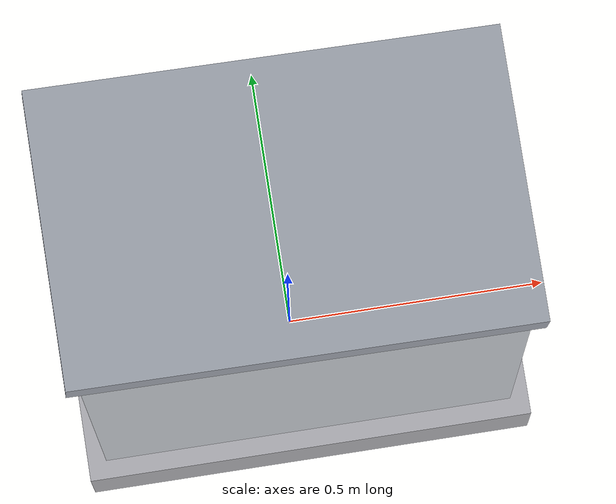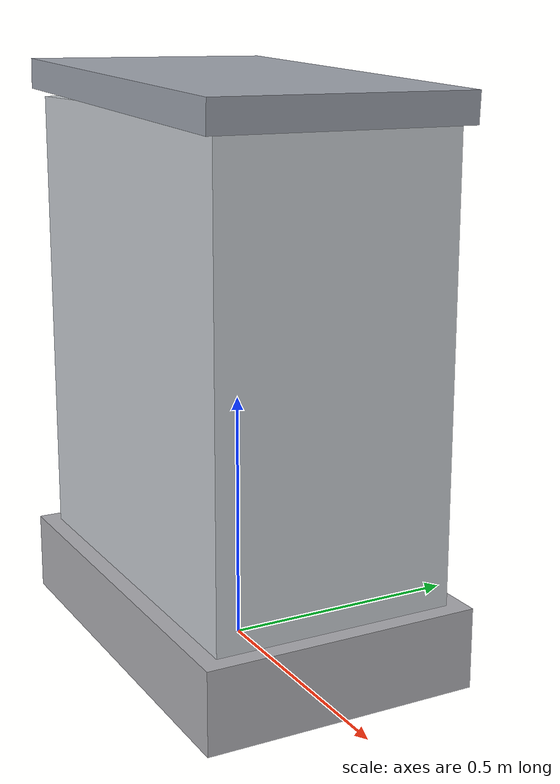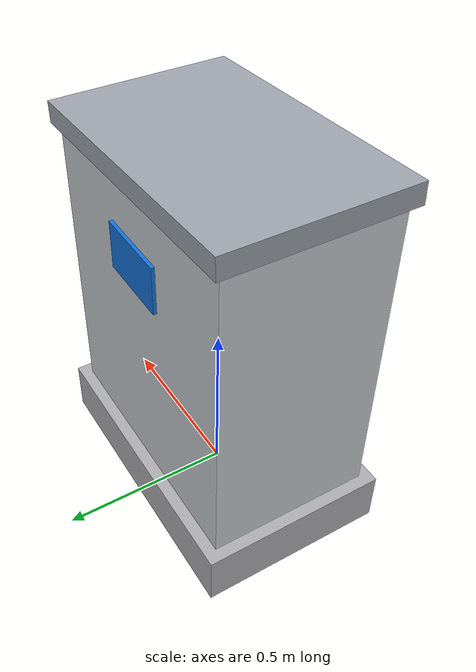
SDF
<?xml version="1.0" ?>
<sdf version="1.8">
  <model name="telecom_box">
    <static>true</static>
    <link name="box_link">

      <!-- 物理碰撞剛體 (單一 Box 幾何) -->
      <collision name="box_col">
        <pose>0 0 0.55 0 0 0</pose>
        <geometry><box><size>0.8 0.5 1.1</size></box></geometry>
      </collision>

      <!-- 視覺：混凝土基座 (Concrete Base) -->
      <visual name="base">
        <pose>0 0 0.08 0 0 0</pose>
        <geometry><box><size>0.85 0.55 0.16</size></box></geometry>
        <material><ambient>0.6 0.6 0.62 1</ambient><diffuse>0.68 0.68 0.70 1</diffuse></material>
      </visual>

      <!-- 視覺：中信灰烤漆金屬箱體 (Light Industrial Grey Metal) -->
      <visual name="cabinet">
        <pose>0 0 0.60 0 0 0</pose>
        <geometry><box><size>0.78 0.48 0.95</size></box></geometry>
        <material><ambient>0.70 0.72 0.74 1</ambient><diffuse>0.78 0.80 0.82 1</diffuse></material>
      </visual>

      <!-- 視覺：頂蓋微斜防雨頂板 (Weatherproof Slanted Roof) -->
      <visual name="roof">
        <pose>0 0 1.10 0 0.05 0</pose>
        <geometry><box><size>0.82 0.52 0.06</size></box></geometry>
        <material><ambient>0.55 0.57 0.60 1</ambient><diffuse>0.62 0.64 0.68 1</diffuse></material>
      </visual>

      <!-- 視覺：中華電信企業藍標牌 (Chunghwa Telecom Blue Emblem) -->
      <visual name="emblem">
        <pose>0 0.245 0.85 0 0 0</pose>
        <geometry><box><size>0.22 0.01 0.14</size></box></geometry>
        <material><ambient>0.05 0.35 0.75 1</ambient><diffuse>0.08 0.45 0.85 1</diffuse></material>
      </visual>
    </link>
  </model>
</sdf>
